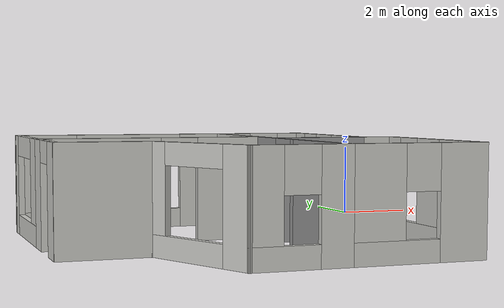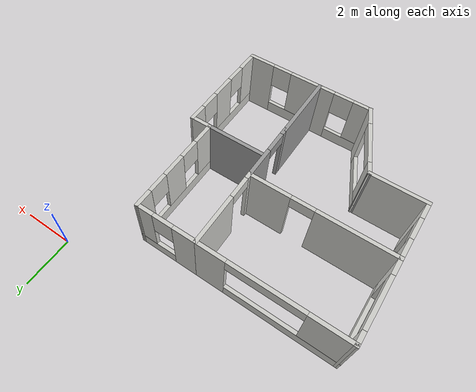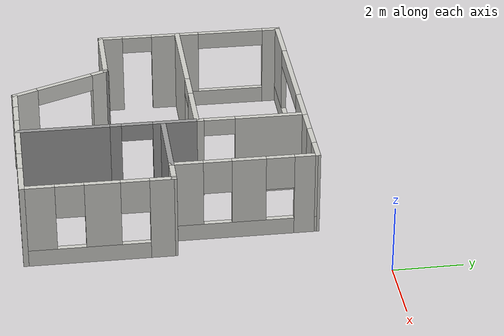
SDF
<?xml version='1.0'?>
<sdf version='1.6'>
  <model name='Flat_Layout'>
    <pose frame=''>-5.83393 -5.88611 0 0 -0 0</pose>
    <link name='Wall_0'>
      <pose frame=''>-1.55007 4.13411 0 0 -0 3.14086</pose>
      <visual name='Wall_0_Visual_0'>
        <pose frame=''>-2.18569 0 1.25 0 -0 0</pose>
        <geometry>
          <box>
            <size>1.20862 0.15 2.5</size>
          </box>
        </geometry>
        <material>
          <script>
            <uri>file://media/materials/scripts/gazebo.material</uri>
            <name>Gazebo/CeilingTiled</name>
          </script>
          <ambient>1 1 1 1</ambient>
        </material>
        <meta>
          <layer>0</layer>
        </meta>
      </visual>
      <collision name='Wall_0_Collision_0'>
        <geometry>
          <box>
            <size>1.20862 0.15 2.5</size>
          </box>
        </geometry>
        <pose frame=''>-2.18569 0 1.25 0 -0 0</pose>
      </collision>
      <visual name='Wall_0_Visual_1'>
        <pose frame=''>0.604312 0 0.25 0 -0 0</pose>
        <geometry>
          <box>
            <size>4.37138 0.15 0.5</size>
          </box>
        </geometry>
        <material>
          <script>
            <uri>file://media/materials/scripts/gazebo.material</uri>
            <name>Gazebo/CeilingTiled</name>
          </script>
          <ambient>1 1 1 1</ambient>
        </material>
        <meta>
          <layer>0</layer>
        </meta>
      </visual>
      <collision name='Wall_0_Collision_1'>
        <geometry>
          <box>
            <size>4.37138 0.15 0.5</size>
          </box>
        </geometry>
        <pose frame=''>0.604312 0 0.25 0 -0 0</pose>
      </collision>
      <visual name='Wall_0_Visual_2'>
        <pose frame=''>2.00431 0 1.5 0 -0 0</pose>
        <geometry>
          <box>
            <size>1.57138 0.15 2</size>
          </box>
        </geometry>
        <material>
          <script>
            <uri>file://media/materials/scripts/gazebo.material</uri>
            <name>Gazebo/CeilingTiled</name>
          </script>
          <ambient>1 1 1 1</ambient>
        </material>
        <meta>
          <layer>0</layer>
        </meta>
      </visual>
      <collision name='Wall_0_Collision_2'>
        <geometry>
          <box>
            <size>1.57138 0.15 2</size>
          </box>
        </geometry>
        <pose frame=''>2.00431 0 1.5 0 -0 0</pose>
      </collision>
      <visual name='Wall_0_Visual_3'>
        <pose frame=''>-0.181377 0 2.25 0 -0 0</pose>
        <geometry>
          <box>
            <size>2.8 0.15 0.5</size>
          </box>
        </geometry>
        <material>
          <script>
            <uri>file://media/materials/scripts/gazebo.material</uri>
            <name>Gazebo/CeilingTiled</name>
          </script>
          <ambient>1 1 1 1</ambient>
        </material>
        <meta>
          <layer>0</layer>
        </meta>
      </visual>
      <collision name='Wall_0_Collision_3'>
        <geometry>
          <box>
            <size>2.8 0.15 0.5</size>
          </box>
        </geometry>
        <pose frame=''>-0.181377 0 2.25 0 -0 0</pose>
      </collision>
    </link>
    <link name='Wall_11'>
      <pose frame=''>-4.26507 2.57111 0 0 0 -1.5708</pose>
      <visual name='Wall_11_Visual_0'>
        <pose frame=''>-1.36426 0 1.25 0 -0 0</pose>
        <geometry>
          <box>
            <size>0.551477 0.15 2.5</size>
          </box>
        </geometry>
        <material>
          <script>
            <uri>file://media/materials/scripts/gazebo.material</uri>
            <name>Gazebo/CeilingTiled</name>
          </script>
          <ambient>1 1 1 1</ambient>
        </material>
        <meta>
          <layer>0</layer>
        </meta>
      </visual>
      <collision name='Wall_11_Collision_0'>
        <geometry>
          <box>
            <size>0.551477 0.15 2.5</size>
          </box>
        </geometry>
        <pose frame=''>-1.36426 0 1.25 0 -0 0</pose>
      </collision>
      <visual name='Wall_11_Visual_1'>
        <pose frame=''>0.275738 0 0.25 0 -0 0</pose>
        <geometry>
          <box>
            <size>2.72852 0.15 0.5</size>
          </box>
        </geometry>
        <material>
          <script>
            <uri>file://media/materials/scripts/gazebo.material</uri>
            <name>Gazebo/CeilingTiled</name>
          </script>
          <ambient>1 1 1 1</ambient>
        </material>
        <meta>
          <layer>0</layer>
        </meta>
      </visual>
      <collision name='Wall_11_Collision_1'>
        <geometry>
          <box>
            <size>2.72852 0.15 0.5</size>
          </box>
        </geometry>
        <pose frame=''>0.275738 0 0.25 0 -0 0</pose>
      </collision>
      <visual name='Wall_11_Visual_2'>
        <pose frame=''>1.27574 0 1.5 0 -0 0</pose>
        <geometry>
          <box>
            <size>0.728523 0.15 2</size>
          </box>
        </geometry>
        <material>
          <script>
            <uri>file://media/materials/scripts/gazebo.material</uri>
            <name>Gazebo/CeilingTiled</name>
          </script>
          <ambient>1 1 1 1</ambient>
        </material>
        <meta>
          <layer>0</layer>
        </meta>
      </visual>
      <collision name='Wall_11_Collision_2'>
        <geometry>
          <box>
            <size>0.728523 0.15 2</size>
          </box>
        </geometry>
        <pose frame=''>1.27574 0 1.5 0 -0 0</pose>
      </collision>
      <visual name='Wall_11_Visual_3'>
        <pose frame=''>-0.088523 0 2.25 0 -0 0</pose>
        <geometry>
          <box>
            <size>2 0.15 0.5</size>
          </box>
        </geometry>
        <material>
          <script>
            <uri>file://media/materials/scripts/gazebo.material</uri>
            <name>Gazebo/CeilingTiled</name>
          </script>
          <ambient>1 1 1 1</ambient>
        </material>
        <meta>
          <layer>0</layer>
        </meta>
      </visual>
      <collision name='Wall_11_Collision_3'>
        <geometry>
          <box>
            <size>2 0.15 0.5</size>
          </box>
        </geometry>
        <pose frame=''>-0.088523 0 2.25 0 -0 0</pose>
      </collision>
    </link>
    <link name='Wall_13'>
      <collision name='Wall_13_Collision'>
        <geometry>
          <box>
            <size>0.900059 0.15 2.5</size>
          </box>
        </geometry>
        <pose frame=''>0 0 1.25 0 -0 0</pose>
      </collision>
      <visual name='Wall_13_Visual'>
        <pose frame=''>0 0 1.25 0 -0 0</pose>
        <geometry>
          <box>
            <size>0.900059 0.15 2.5</size>
          </box>
        </geometry>
        <material>
          <script>
            <uri>file://media/materials/scripts/gazebo.material</uri>
            <name>Gazebo/CeilingTiled</name>
          </script>
          <ambient>1 1 1 1</ambient>
        </material>
        <meta>
          <layer>0</layer>
        </meta>
      </visual>
      <pose frame=''>3.88996 0.036793 0 0 0 -0.001828</pose>
    </link>
    <link name='Wall_14'>
      <pose frame=''>4.26498 -2.03889 0 0 0 -1.5708</pose>
      <visual name='Wall_14_Visual_0'>
        <pose frame=''>-1.77664 0 1.25 0 -0 0</pose>
        <geometry>
          <box>
            <size>0.746717 0.15 2.5</size>
          </box>
        </geometry>
        <material>
          <script>
            <uri>file://media/materials/scripts/gazebo.material</uri>
            <name>Gazebo/CeilingTiled</name>
          </script>
          <ambient>1 1 1 1</ambient>
        </material>
        <meta>
          <layer>0</layer>
        </meta>
      </visual>
      <collision name='Wall_14_Collision_0'>
        <geometry>
          <box>
            <size>0.746717 0.15 2.5</size>
          </box>
        </geometry>
        <pose frame=''>-1.77664 0 1.25 0 -0 0</pose>
      </collision>
      <visual name='Wall_14_Visual_1'>
        <pose frame=''>0.373359 0 0.25 0 -0 0</pose>
        <geometry>
          <box>
            <size>3.55328 0.15 0.5</size>
          </box>
        </geometry>
        <material>
          <script>
            <uri>file://media/materials/scripts/gazebo.material</uri>
            <name>Gazebo/CeilingTiled</name>
          </script>
          <ambient>1 1 1 1</ambient>
        </material>
        <meta>
          <layer>0</layer>
        </meta>
      </visual>
      <collision name='Wall_14_Collision_1'>
        <geometry>
          <box>
            <size>3.55328 0.15 0.5</size>
          </box>
        </geometry>
        <pose frame=''>0.373359 0 0.25 0 -0 0</pose>
      </collision>
      <visual name='Wall_14_Visual_2'>
        <pose frame=''>-0.10906 0 1.5 0 -0 0</pose>
        <geometry>
          <box>
            <size>0.988445 0.15 2</size>
          </box>
        </geometry>
        <material>
          <script>
            <uri>file://media/materials/scripts/gazebo.material</uri>
            <name>Gazebo/CeilingTiled</name>
          </script>
          <ambient>1 1 1 1</ambient>
        </material>
        <meta>
          <layer>0</layer>
        </meta>
      </visual>
      <collision name='Wall_14_Collision_2'>
        <geometry>
          <box>
            <size>0.988445 0.15 2</size>
          </box>
        </geometry>
        <pose frame=''>-0.10906 0 1.5 0 -0 0</pose>
      </collision>
      <visual name='Wall_14_Visual_3'>
        <pose frame=''>1.66758 0 1.5 0 -0 0</pose>
        <geometry>
          <box>
            <size>0.964838 0.15 2</size>
          </box>
        </geometry>
        <material>
          <script>
            <uri>file://media/materials/scripts/gazebo.material</uri>
            <name>Gazebo/CeilingTiled</name>
          </script>
          <ambient>1 1 1 1</ambient>
        </material>
        <meta>
          <layer>0</layer>
        </meta>
      </visual>
      <collision name='Wall_14_Collision_3'>
        <geometry>
          <box>
            <size>0.964838 0.15 2</size>
          </box>
        </geometry>
        <pose frame=''>1.66758 0 1.5 0 -0 0</pose>
      </collision>
      <visual name='Wall_14_Visual_4'>
        <pose frame=''>-1.00328 0 2 0 -0 0</pose>
        <geometry>
          <box>
            <size>0.8 0.15 1</size>
          </box>
        </geometry>
        <material>
          <script>
            <uri>file://media/materials/scripts/gazebo.material</uri>
            <name>Gazebo/CeilingTiled</name>
          </script>
          <ambient>1 1 1 1</ambient>
        </material>
        <meta>
          <layer>0</layer>
        </meta>
      </visual>
      <collision name='Wall_14_Collision_4'>
        <geometry>
          <box>
            <size>0.8 0.15 1</size>
          </box>
        </geometry>
        <pose frame=''>-1.00328 0 2 0 -0 0</pose>
      </collision>
      <visual name='Wall_14_Visual_5'>
        <pose frame=''>0.785162 0 2 0 -0 0</pose>
        <geometry>
          <box>
            <size>0.8 0.15 1</size>
          </box>
        </geometry>
        <material>
          <script>
            <uri>file://media/materials/scripts/gazebo.material</uri>
            <name>Gazebo/CeilingTiled</name>
          </script>
          <ambient>1 1 1 1</ambient>
        </material>
        <meta>
          <layer>0</layer>
        </meta>
      </visual>
      <collision name='Wall_14_Collision_5'>
        <geometry>
          <box>
            <size>0.8 0.15 1</size>
          </box>
        </geometry>
        <pose frame=''>0.785162 0 2 0 -0 0</pose>
      </collision>
    </link>
    <link name='Wall_16'>
      <pose frame=''>2.71498 -4.11389 0 0 -0 3.14159</pose>
      <visual name='Wall_16_Visual_0'>
        <pose frame=''>-1.06162 0 1.25 0 -0 0</pose>
        <geometry>
          <box>
            <size>1.12676 0.15 2.5</size>
          </box>
        </geometry>
        <material>
          <script>
            <uri>file://media/materials/scripts/gazebo.material</uri>
            <name>Gazebo/CeilingTiled</name>
          </script>
          <ambient>1 1 1 1</ambient>
        </material>
        <meta>
          <layer>0</layer>
        </meta>
      </visual>
      <collision name='Wall_16_Collision_0'>
        <geometry>
          <box>
            <size>1.12676 0.15 2.5</size>
          </box>
        </geometry>
        <pose frame=''>-1.06162 0 1.25 0 -0 0</pose>
      </collision>
      <visual name='Wall_16_Visual_1'>
        <pose frame=''>0.563378 0 0.25 0 -0 0</pose>
        <geometry>
          <box>
            <size>2.12324 0.15 0.5</size>
          </box>
        </geometry>
        <material>
          <script>
            <uri>file://media/materials/scripts/gazebo.material</uri>
            <name>Gazebo/CeilingTiled</name>
          </script>
          <ambient>1 1 1 1</ambient>
        </material>
        <meta>
          <layer>0</layer>
        </meta>
      </visual>
      <collision name='Wall_16_Collision_1'>
        <geometry>
          <box>
            <size>2.12324 0.15 0.5</size>
          </box>
        </geometry>
        <pose frame=''>0.563378 0 0.25 0 -0 0</pose>
      </collision>
      <visual name='Wall_16_Visual_2'>
        <pose frame=''>0.963378 0 1.5 0 -0 0</pose>
        <geometry>
          <box>
            <size>1.32324 0.15 2</size>
          </box>
        </geometry>
        <material>
          <script>
            <uri>file://media/materials/scripts/gazebo.material</uri>
            <name>Gazebo/CeilingTiled</name>
          </script>
          <ambient>1 1 1 1</ambient>
        </material>
        <meta>
          <layer>0</layer>
        </meta>
      </visual>
      <collision name='Wall_16_Collision_2'>
        <geometry>
          <box>
            <size>1.32324 0.15 2</size>
          </box>
        </geometry>
        <pose frame=''>0.963378 0 1.5 0 -0 0</pose>
      </collision>
      <visual name='Wall_16_Visual_3'>
        <pose frame=''>-0.098243 0 2 0 -0 0</pose>
        <geometry>
          <box>
            <size>0.8 0.15 1</size>
          </box>
        </geometry>
        <material>
          <script>
            <uri>file://media/materials/scripts/gazebo.material</uri>
            <name>Gazebo/CeilingTiled</name>
          </script>
          <ambient>1 1 1 1</ambient>
        </material>
        <meta>
          <layer>0</layer>
        </meta>
      </visual>
      <collision name='Wall_16_Collision_3'>
        <geometry>
          <box>
            <size>0.8 0.15 1</size>
          </box>
        </geometry>
        <pose frame=''>-0.098243 0 2 0 -0 0</pose>
      </collision>
    </link>
    <link name='Wall_18'>
      <collision name='Wall_18_Collision'>
        <geometry>
          <box>
            <size>2.85 0.15 2.5</size>
          </box>
        </geometry>
        <pose frame=''>0 0 1.25 0 -0 0</pose>
      </collision>
      <visual name='Wall_18_Visual'>
        <pose frame=''>0 0 1.25 0 -0 0</pose>
        <geometry>
          <box>
            <size>2.85 0.15 2.5</size>
          </box>
        </geometry>
        <material>
          <script>
            <uri>file://media/materials/scripts/gazebo.material</uri>
            <name>Gazebo/Grey</name>
          </script>
          <ambient>1 1 1 1</ambient>
        </material>
        <meta>
          <layer>0</layer>
        </meta>
      </visual>
      <pose frame=''>1.16498 -2.76389 0 0 -0 1.5708</pose>
    </link>
    <link name='Wall_20'>
      <pose frame=''>0.099985 -4.11389 0 0 -0 3.14159</pose>
      <visual name='Wall_20_Visual_0'>
        <pose frame=''>-0.778713 0 1.25 0 -0 0</pose>
        <geometry>
          <box>
            <size>0.722573 0.15 2.5</size>
          </box>
        </geometry>
        <material>
          <script>
            <uri>file://media/materials/scripts/gazebo.material</uri>
            <name>Gazebo/CeilingTiled</name>
          </script>
          <ambient>1 1 1 1</ambient>
        </material>
        <meta>
          <layer>0</layer>
        </meta>
      </visual>
      <collision name='Wall_20_Collision_0'>
        <geometry>
          <box>
            <size>0.722573 0.15 2.5</size>
          </box>
        </geometry>
        <pose frame=''>-0.778713 0 1.25 0 -0 0</pose>
      </collision>
      <visual name='Wall_20_Visual_1'>
        <pose frame=''>0.361287 0 0.25 0 -0 0</pose>
        <geometry>
          <box>
            <size>1.55743 0.15 0.5</size>
          </box>
        </geometry>
        <material>
          <script>
            <uri>file://media/materials/scripts/gazebo.material</uri>
            <name>Gazebo/CeilingTiled</name>
          </script>
          <ambient>1 1 1 1</ambient>
        </material>
        <meta>
          <layer>0</layer>
        </meta>
      </visual>
      <collision name='Wall_20_Collision_1'>
        <geometry>
          <box>
            <size>1.55743 0.15 0.5</size>
          </box>
        </geometry>
        <pose frame=''>0.361287 0 0.25 0 -0 0</pose>
      </collision>
      <visual name='Wall_20_Visual_2'>
        <pose frame=''>0.761287 0 1.5 0 -0 0</pose>
        <geometry>
          <box>
            <size>0.757427 0.15 2</size>
          </box>
        </geometry>
        <material>
          <script>
            <uri>file://media/materials/scripts/gazebo.material</uri>
            <name>Gazebo/CeilingTiled</name>
          </script>
          <ambient>1 1 1 1</ambient>
        </material>
        <meta>
          <layer>0</layer>
        </meta>
      </visual>
      <collision name='Wall_20_Collision_2'>
        <geometry>
          <box>
            <size>0.757427 0.15 2</size>
          </box>
        </geometry>
        <pose frame=''>0.761287 0 1.5 0 -0 0</pose>
      </collision>
      <visual name='Wall_20_Visual_3'>
        <pose frame=''>-0.017427 0 2 0 -0 0</pose>
        <geometry>
          <box>
            <size>0.8 0.15 1</size>
          </box>
        </geometry>
        <material>
          <script>
            <uri>file://media/materials/scripts/gazebo.material</uri>
            <name>Gazebo/CeilingTiled</name>
          </script>
          <ambient>1 1 1 1</ambient>
        </material>
        <meta>
          <layer>0</layer>
        </meta>
      </visual>
      <collision name='Wall_20_Collision_3'>
        <geometry>
          <box>
            <size>0.8 0.15 1</size>
          </box>
        </geometry>
        <pose frame=''>-0.017427 0 2 0 -0 0</pose>
      </collision>
    </link>
    <link name='Wall_24'>
      <pose frame=''>-1.59007 1.00611 0 0 -0 0</pose>
      <visual name='Wall_24_Visual_0'>
        <pose frame=''>-1.25566 0 1.25 0 -0 0</pose>
        <geometry>
          <box>
            <size>2.98868 0.15 2.5</size>
          </box>
        </geometry>
        <material>
          <script>
            <uri>file://media/materials/scripts/gazebo.material</uri>
            <name>Gazebo/CeilingTiled</name>
          </script>
          <ambient>1 1 1 1</ambient>
        </material>
        <meta>
          <layer>0</layer>
        </meta>
      </visual>
      <collision name='Wall_24_Collision_0'>
        <geometry>
          <box>
            <size>2.98868 0.15 2.5</size>
          </box>
        </geometry>
        <pose frame=''>-1.25566 0 1.25 0 -0 0</pose>
      </collision>
      <visual name='Wall_24_Visual_1'>
        <pose frame=''>1.94434 0 1.25 0 -0 0</pose>
        <geometry>
          <box>
            <size>1.61132 0.15 2.5</size>
          </box>
        </geometry>
        <material>
          <script>
            <uri>file://media/materials/scripts/gazebo.material</uri>
            <name>Gazebo/CeilingTiled</name>
          </script>
          <ambient>1 1 1 1</ambient>
        </material>
        <meta>
          <layer>0</layer>
        </meta>
      </visual>
      <collision name='Wall_24_Collision_1'>
        <geometry>
          <box>
            <size>1.61132 0.15 2.5</size>
          </box>
        </geometry>
        <pose frame=''>1.94434 0 1.25 0 -0 0</pose>
      </collision>
      <visual name='Wall_24_Visual_2'>
        <pose frame=''>0.688677 0 2.25 0 -0 0</pose>
        <geometry>
          <box>
            <size>0.9 0.15 0.5</size>
          </box>
        </geometry>
        <material>
          <script>
            <uri>file://media/materials/scripts/gazebo.material</uri>
            <name>Gazebo/CeilingTiled</name>
          </script>
          <ambient>1 1 1 1</ambient>
        </material>
        <meta>
          <layer>0</layer>
        </meta>
      </visual>
      <collision name='Wall_24_Collision_2'>
        <geometry>
          <box>
            <size>0.9 0.15 0.5</size>
          </box>
        </geometry>
        <pose frame=''>0.688677 0 2.25 0 -0 0</pose>
      </collision>
    </link>
    <link name='Wall_3'>
      <pose frame=''>1.16493 2.56861 0 0 0 -1.5708</pose>
      <visual name='Wall_3_Visual_0'>
        <pose frame=''>-0.590629 0 1.25 0 -0 0</pose>
        <geometry>
          <box>
            <size>2.09574 0.15 2.5</size>
          </box>
        </geometry>
        <material>
          <script>
            <uri>file://media/materials/scripts/gazebo.material</uri>
            <name>Gazebo/CeilingTiled</name>
          </script>
          <ambient>1 1 1 1</ambient>
        </material>
        <meta>
          <layer>0</layer>
        </meta>
      </visual>
      <collision name='Wall_3_Collision_0'>
        <geometry>
          <box>
            <size>2.09574 0.15 2.5</size>
          </box>
        </geometry>
        <pose frame=''>-0.590629 0 1.25 0 -0 0</pose>
      </collision>
      <visual name='Wall_3_Visual_1'>
        <pose frame=''>1.49787 0 1.25 0 -0 0</pose>
        <geometry>
          <box>
            <size>0.281257 0.15 2.5</size>
          </box>
        </geometry>
        <material>
          <script>
            <uri>file://media/materials/scripts/gazebo.material</uri>
            <name>Gazebo/CeilingTiled</name>
          </script>
          <ambient>1 1 1 1</ambient>
        </material>
        <meta>
          <layer>0</layer>
        </meta>
      </visual>
      <collision name='Wall_3_Collision_1'>
        <geometry>
          <box>
            <size>0.281257 0.15 2.5</size>
          </box>
        </geometry>
        <pose frame=''>1.49787 0 1.25 0 -0 0</pose>
      </collision>
      <visual name='Wall_3_Visual_2'>
        <pose frame=''>0.907243 0 2.25 0 -0 0</pose>
        <geometry>
          <box>
            <size>0.9 0.15 0.5</size>
          </box>
        </geometry>
        <material>
          <script>
            <uri>file://media/materials/scripts/gazebo.material</uri>
            <name>Gazebo/CeilingTiled</name>
          </script>
          <ambient>1 1 1 1</ambient>
        </material>
        <meta>
          <layer>0</layer>
        </meta>
      </visual>
      <collision name='Wall_3_Collision_2'>
        <geometry>
          <box>
            <size>0.9 0.15 0.5</size>
          </box>
        </geometry>
        <pose frame=''>0.907243 0 2.25 0 -0 0</pose>
      </collision>
    </link>
    <link name='Wall_36'>
      <pose frame=''>1.16498 -0.238893 0 0 -0 1.5708</pose>
      <visual name='Wall_36_Visual_0'>
        <pose frame=''>-1.08622 0 1.25 0 -0 0</pose>
        <geometry>
          <box>
            <size>0.327555 0.15 2.5</size>
          </box>
        </geometry>
        <material>
          <script>
            <uri>file://media/materials/scripts/gazebo.material</uri>
            <name>Gazebo/Grey</name>
          </script>
          <ambient>1 1 1 1</ambient>
        </material>
        <meta>
          <layer>0</layer>
        </meta>
      </visual>
      <collision name='Wall_36_Collision_0'>
        <geometry>
          <box>
            <size>0.327555 0.15 2.5</size>
          </box>
        </geometry>
        <pose frame=''>-1.08622 0 1.25 0 -0 0</pose>
      </collision>
      <visual name='Wall_36_Visual_1'>
        <pose frame=''>0.613777 0 1.25 0 -0 0</pose>
        <geometry>
          <box>
            <size>1.27245 0.15 2.5</size>
          </box>
        </geometry>
        <material>
          <script>
            <uri>file://media/materials/scripts/gazebo.material</uri>
            <name>Gazebo/Grey</name>
          </script>
          <ambient>1 1 1 1</ambient>
        </material>
        <meta>
          <layer>0</layer>
        </meta>
      </visual>
      <collision name='Wall_36_Collision_1'>
        <geometry>
          <box>
            <size>1.27245 0.15 2.5</size>
          </box>
        </geometry>
        <pose frame=''>0.613777 0 1.25 0 -0 0</pose>
      </collision>
      <visual name='Wall_36_Visual_2'>
        <pose frame=''>-0.472445 0 2.25 0 -0 0</pose>
        <geometry>
          <box>
            <size>0.9 0.15 0.5</size>
          </box>
        </geometry>
        <material>
          <script>
            <uri>file://media/materials/scripts/gazebo.material</uri>
            <name>Gazebo/Grey</name>
          </script>
          <ambient>1 1 1 1</ambient>
        </material>
        <meta>
          <layer>0</layer>
        </meta>
      </visual>
      <collision name='Wall_36_Collision_2'>
        <geometry>
          <box>
            <size>0.9 0.15 0.5</size>
          </box>
        </geometry>
        <pose frame=''>-0.472445 0 2.25 0 -0 0</pose>
      </collision>
    </link>
    <link name='Wall_38'>
      <collision name='Wall_38_Collision'>
        <geometry>
          <box>
            <size>2.34994 0.15 2.5</size>
          </box>
        </geometry>
        <pose frame=''>0 0 1.25 0 -0 0</pose>
      </collision>
      <visual name='Wall_38_Visual'>
        <pose frame=''>0 0 1.25 0 -0 0</pose>
        <geometry>
          <box>
            <size>2.34994 0.15 2.5</size>
          </box>
        </geometry>
        <material>
          <script>
            <uri>file://media/materials/scripts/gazebo.material</uri>
            <name>Gazebo/Grey</name>
          </script>
          <ambient>1 1 1 1</ambient>
        </material>
        <meta>
          <layer>0</layer>
        </meta>
      </visual>
      <pose frame=''>2.41495 0.036793 0 0 0 -3.14097</pose>
    </link>
    <link name='Wall_43'>
      <pose frame=''>-4.26507 -0.168893 0 0 0 -1.5708</pose>
      <visual name='Wall_43_Visual_0'>
        <pose frame=''>-0.810955 0 1.25 0 -0 0</pose>
        <geometry>
          <box>
            <size>0.878089 0.15 2.5</size>
          </box>
        </geometry>
        <material>
          <script>
            <uri>file://media/materials/scripts/gazebo.material</uri>
            <name>Gazebo/CeilingTiled</name>
          </script>
          <ambient>1 1 1 1</ambient>
        </material>
        <meta>
          <layer>0</layer>
        </meta>
      </visual>
      <collision name='Wall_43_Collision_0'>
        <geometry>
          <box>
            <size>0.878089 0.15 2.5</size>
          </box>
        </geometry>
        <pose frame=''>-0.810955 0 1.25 0 -0 0</pose>
      </collision>
      <visual name='Wall_43_Visual_1'>
        <pose frame=''>0.889045 0 1.25 0 -0 0</pose>
        <geometry>
          <box>
            <size>0.721911 0.15 2.5</size>
          </box>
        </geometry>
        <material>
          <script>
            <uri>file://media/materials/scripts/gazebo.material</uri>
            <name>Gazebo/CeilingTiled</name>
          </script>
          <ambient>1 1 1 1</ambient>
        </material>
        <meta>
          <layer>0</layer>
        </meta>
      </visual>
      <collision name='Wall_43_Collision_1'>
        <geometry>
          <box>
            <size>0.721911 0.15 2.5</size>
          </box>
        </geometry>
        <pose frame=''>0.889045 0 1.25 0 -0 0</pose>
      </collision>
      <visual name='Wall_43_Visual_2'>
        <pose frame=''>0.078089 0 2.25 0 -0 0</pose>
        <geometry>
          <box>
            <size>0.9 0.15 0.5</size>
          </box>
        </geometry>
        <material>
          <script>
            <uri>file://media/materials/scripts/gazebo.material</uri>
            <name>Gazebo/CeilingTiled</name>
          </script>
          <ambient>1 1 1 1</ambient>
        </material>
        <meta>
          <layer>0</layer>
        </meta>
      </visual>
      <collision name='Wall_43_Collision_2'>
        <geometry>
          <box>
            <size>0.9 0.15 0.5</size>
          </box>
        </geometry>
        <pose frame=''>0.078089 0 2.25 0 -0 0</pose>
      </collision>
    </link>
    <link name='Wall_46'>
      <collision name='Wall_46_Collision'>
        <geometry>
          <box>
            <size>0.15 0.15 2.5</size>
          </box>
        </geometry>
        <pose frame=''>0 0 1.25 0 -0 0</pose>
      </collision>
      <visual name='Wall_46_Visual'>
        <pose frame=''>0 0 1.25 0 -0 0</pose>
        <geometry>
          <box>
            <size>0.15 0.15 2.5</size>
          </box>
        </geometry>
        <material>
          <script>
            <uri>file://media/materials/scripts/gazebo.material</uri>
            <name>Gazebo/Grey</name>
          </script>
          <ambient>1 1 1 1</ambient>
        </material>
        <meta>
          <layer>0</layer>
        </meta>
      </visual>
      <pose frame=''>-2.16507 -1.36771 0 0 -0 0</pose>
    </link>
    <link name='Wall_5'>
      <pose frame=''>2.33993 4.13479 0 0 -0 0.002286</pose>
      <visual name='Wall_5_Visual_0'>
        <pose frame=''>-0.765105 0 1.25 0 -0 0</pose>
        <geometry>
          <box>
            <size>0.96979 0.15 2.5</size>
          </box>
        </geometry>
        <material>
          <script>
            <uri>file://media/materials/scripts/gazebo.material</uri>
            <name>Gazebo/CeilingTiled</name>
          </script>
          <ambient>1 1 1 1</ambient>
        </material>
        <meta>
          <layer>0</layer>
        </meta>
      </visual>
      <collision name='Wall_5_Collision_0'>
        <geometry>
          <box>
            <size>0.96979 0.15 2.5</size>
          </box>
        </geometry>
        <pose frame=''>-0.765105 0 1.25 0 -0 0</pose>
      </collision>
      <visual name='Wall_5_Visual_1'>
        <pose frame=''>0.484895 0 0.25 0 -0 0</pose>
        <geometry>
          <box>
            <size>1.53021 0.15 0.5</size>
          </box>
        </geometry>
        <material>
          <script>
            <uri>file://media/materials/scripts/gazebo.material</uri>
            <name>Gazebo/CeilingTiled</name>
          </script>
          <ambient>1 1 1 1</ambient>
        </material>
        <meta>
          <layer>0</layer>
        </meta>
      </visual>
      <collision name='Wall_5_Collision_1'>
        <geometry>
          <box>
            <size>1.53021 0.15 0.5</size>
          </box>
        </geometry>
        <pose frame=''>0.484895 0 0.25 0 -0 0</pose>
      </collision>
      <visual name='Wall_5_Visual_2'>
        <pose frame=''>0.884895 0 1.5 0 -0 0</pose>
        <geometry>
          <box>
            <size>0.73021 0.15 2</size>
          </box>
        </geometry>
        <material>
          <script>
            <uri>file://media/materials/scripts/gazebo.material</uri>
            <name>Gazebo/CeilingTiled</name>
          </script>
          <ambient>1 1 1 1</ambient>
        </material>
        <meta>
          <layer>0</layer>
        </meta>
      </visual>
      <collision name='Wall_5_Collision_2'>
        <geometry>
          <box>
            <size>0.73021 0.15 2</size>
          </box>
        </geometry>
        <pose frame=''>0.884895 0 1.5 0 -0 0</pose>
      </collision>
      <visual name='Wall_5_Visual_3'>
        <pose frame=''>0.11979 0 2 0 -0 0</pose>
        <geometry>
          <box>
            <size>0.8 0.15 1</size>
          </box>
        </geometry>
        <material>
          <script>
            <uri>file://media/materials/scripts/gazebo.material</uri>
            <name>Gazebo/CeilingTiled</name>
          </script>
          <ambient>1 1 1 1</ambient>
        </material>
        <meta>
          <layer>0</layer>
        </meta>
      </visual>
      <collision name='Wall_5_Collision_3'>
        <geometry>
          <box>
            <size>0.8 0.15 1</size>
          </box>
        </geometry>
        <pose frame=''>0.11979 0 2 0 -0 0</pose>
      </collision>
    </link>
    <link name='Wall_51'>
      <pose frame=''>-1.56504 -2.7408 0 0 -0 1.98278</pose>
      <visual name='Wall_51_Visual_0'>
        <pose frame=''>-1.1766 0 1.25 0 -0 0</pose>
        <geometry>
          <box>
            <size>0.793738 0.15 2.5</size>
          </box>
        </geometry>
        <material>
          <script>
            <uri>file://media/materials/scripts/gazebo.material</uri>
            <name>Gazebo/CeilingTiled</name>
          </script>
          <ambient>1 1 1 1</ambient>
        </material>
        <meta>
          <layer>0</layer>
        </meta>
      </visual>
      <collision name='Wall_51_Collision_0'>
        <geometry>
          <box>
            <size>0.793738 0.15 2.5</size>
          </box>
        </geometry>
        <pose frame=''>-1.1766 0 1.25 0 -0 0</pose>
      </collision>
      <visual name='Wall_51_Visual_1'>
        <pose frame=''>0.396869 0 0.25 0 -0 0</pose>
        <geometry>
          <box>
            <size>2.3532 0.15 0.5</size>
          </box>
        </geometry>
        <material>
          <script>
            <uri>file://media/materials/scripts/gazebo.material</uri>
            <name>Gazebo/CeilingTiled</name>
          </script>
          <ambient>1 1 1 1</ambient>
        </material>
        <meta>
          <layer>0</layer>
        </meta>
      </visual>
      <collision name='Wall_51_Collision_1'>
        <geometry>
          <box>
            <size>2.3532 0.15 0.5</size>
          </box>
        </geometry>
        <pose frame=''>0.396869 0 0.25 0 -0 0</pose>
      </collision>
      <visual name='Wall_51_Visual_2'>
        <pose frame=''>1.29687 0 1.5 0 -0 0</pose>
        <geometry>
          <box>
            <size>0.553201 0.15 2</size>
          </box>
        </geometry>
        <material>
          <script>
            <uri>file://media/materials/scripts/gazebo.material</uri>
            <name>Gazebo/CeilingTiled</name>
          </script>
          <ambient>1 1 1 1</ambient>
        </material>
        <meta>
          <layer>0</layer>
        </meta>
      </visual>
      <collision name='Wall_51_Collision_2'>
        <geometry>
          <box>
            <size>0.553201 0.15 2</size>
          </box>
        </geometry>
        <pose frame=''>1.29687 0 1.5 0 -0 0</pose>
      </collision>
      <visual name='Wall_51_Visual_3'>
        <pose frame=''>0.120269 0 2.25 0 -0 0</pose>
        <geometry>
          <box>
            <size>1.8 0.15 0.5</size>
          </box>
        </geometry>
        <material>
          <script>
            <uri>file://media/materials/scripts/gazebo.material</uri>
            <name>Gazebo/CeilingTiled</name>
          </script>
          <ambient>1 1 1 1</ambient>
        </material>
        <meta>
          <layer>0</layer>
        </meta>
      </visual>
      <collision name='Wall_51_Collision_3'>
        <geometry>
          <box>
            <size>1.8 0.15 0.5</size>
          </box>
        </geometry>
        <pose frame=''>0.120269 0 2.25 0 -0 0</pose>
      </collision>
    </link>
    <link name='Wall_52'>
      <collision name='Wall_52_Collision'>
        <geometry>
          <box>
            <size>0.15 0.15 2.5</size>
          </box>
        </geometry>
        <pose frame=''>0 0 1.25 0 -0 0</pose>
      </collision>
      <visual name='Wall_52_Visual'>
        <pose frame=''>0 0 1.25 0 -0 0</pose>
        <geometry>
          <box>
            <size>0.15 0.15 2.5</size>
          </box>
        </geometry>
        <material>
          <script>
            <uri>file://media/materials/scripts/gazebo.material</uri>
            <name>Gazebo/Grey</name>
          </script>
          <ambient>1 1 1 1</ambient>
        </material>
        <meta>
          <layer>0</layer>
        </meta>
      </visual>
      <pose frame=''>-2.16507 -1.36771 0 0 -0 0</pose>
    </link>
    <link name='Wall_54'>
      <collision name='Wall_54_Collision'>
        <geometry>
          <box>
            <size>2.25 0.15 2.5</size>
          </box>
        </geometry>
        <pose frame=''>0 0 1.25 0 -0 0</pose>
      </collision>
      <visual name='Wall_54_Visual'>
        <pose frame=''>0 0 1.25 0 -0 0</pose>
        <geometry>
          <box>
            <size>2.25 0.15 2.5</size>
          </box>
        </geometry>
        <material>
          <script>
            <uri>file://media/materials/scripts/gazebo.material</uri>
            <name>Gazebo/CeilingTiled</name>
          </script>
          <ambient>1 1 1 1</ambient>
        </material>
        <meta>
          <layer>0</layer>
        </meta>
      </visual>
      <pose frame=''>-3.21507 -1.36771 0 0 -0 3.14159</pose>
    </link>
    <link name='Wall_7'>
      <pose frame=''>3.51493 2.08748 0 0 0 -1.5708</pose>
      <visual name='Wall_7_Visual_0'>
        <pose frame=''>-1.75967 0 1.25 0 -0 0</pose>
        <geometry>
          <box>
            <size>0.730666 0.15 2.5</size>
          </box>
        </geometry>
        <material>
          <script>
            <uri>file://media/materials/scripts/gazebo.material</uri>
            <name>Gazebo/CeilingTiled</name>
          </script>
          <ambient>1 1 1 1</ambient>
        </material>
        <meta>
          <layer>0</layer>
        </meta>
      </visual>
      <collision name='Wall_7_Collision_0'>
        <geometry>
          <box>
            <size>0.730666 0.15 2.5</size>
          </box>
        </geometry>
        <pose frame=''>-1.75967 0 1.25 0 -0 0</pose>
      </collision>
      <visual name='Wall_7_Visual_1'>
        <pose frame=''>0.365333 0 0.25 0 -0 0</pose>
        <geometry>
          <box>
            <size>3.51933 0.15 0.5</size>
          </box>
        </geometry>
        <material>
          <script>
            <uri>file://media/materials/scripts/gazebo.material</uri>
            <name>Gazebo/CeilingTiled</name>
          </script>
          <ambient>1 1 1 1</ambient>
        </material>
        <meta>
          <layer>0</layer>
        </meta>
      </visual>
      <collision name='Wall_7_Collision_1'>
        <geometry>
          <box>
            <size>3.51933 0.15 0.5</size>
          </box>
        </geometry>
        <pose frame=''>0.365333 0 0.25 0 -0 0</pose>
      </collision>
      <visual name='Wall_7_Visual_2'>
        <pose frame=''>-0.113262 0 1.5 0 -0 0</pose>
        <geometry>
          <box>
            <size>0.962144 0.15 2</size>
          </box>
        </geometry>
        <material>
          <script>
            <uri>file://media/materials/scripts/gazebo.material</uri>
            <name>Gazebo/CeilingTiled</name>
          </script>
          <ambient>1 1 1 1</ambient>
        </material>
        <meta>
          <layer>0</layer>
        </meta>
      </visual>
      <collision name='Wall_7_Collision_2'>
        <geometry>
          <box>
            <size>0.962144 0.15 2</size>
          </box>
        </geometry>
        <pose frame=''>-0.113262 0 1.5 0 -0 0</pose>
      </collision>
      <visual name='Wall_7_Visual_3'>
        <pose frame=''>1.6464 0 1.5 0 -0 0</pose>
        <geometry>
          <box>
            <size>0.95719 0.15 2</size>
          </box>
        </geometry>
        <material>
          <script>
            <uri>file://media/materials/scripts/gazebo.material</uri>
            <name>Gazebo/CeilingTiled</name>
          </script>
          <ambient>1 1 1 1</ambient>
        </material>
        <meta>
          <layer>0</layer>
        </meta>
      </visual>
      <collision name='Wall_7_Collision_3'>
        <geometry>
          <box>
            <size>0.95719 0.15 2</size>
          </box>
        </geometry>
        <pose frame=''>1.6464 0 1.5 0 -0 0</pose>
      </collision>
      <visual name='Wall_7_Visual_4'>
        <pose frame=''>-0.994334 0 2 0 -0 0</pose>
        <geometry>
          <box>
            <size>0.8 0.15 1</size>
          </box>
        </geometry>
        <material>
          <script>
            <uri>file://media/materials/scripts/gazebo.material</uri>
            <name>Gazebo/CeilingTiled</name>
          </script>
          <ambient>1 1 1 1</ambient>
        </material>
        <meta>
          <layer>0</layer>
        </meta>
      </visual>
      <collision name='Wall_7_Collision_4'>
        <geometry>
          <box>
            <size>0.8 0.15 1</size>
          </box>
        </geometry>
        <pose frame=''>-0.994334 0 2 0 -0 0</pose>
      </collision>
      <visual name='Wall_7_Visual_5'>
        <pose frame=''>0.76781 0 2 0 -0 0</pose>
        <geometry>
          <box>
            <size>0.8 0.15 1</size>
          </box>
        </geometry>
        <material>
          <script>
            <uri>file://media/materials/scripts/gazebo.material</uri>
            <name>Gazebo/CeilingTiled</name>
          </script>
          <ambient>1 1 1 1</ambient>
        </material>
        <meta>
          <layer>0</layer>
        </meta>
      </visual>
      <collision name='Wall_7_Collision_5'>
        <geometry>
          <box>
            <size>0.8 0.15 1</size>
          </box>
        </geometry>
        <pose frame=''>0.76781 0 2 0 -0 0</pose>
      </collision>
    </link>
    <static>1</static>
  </model>
</sdf>
